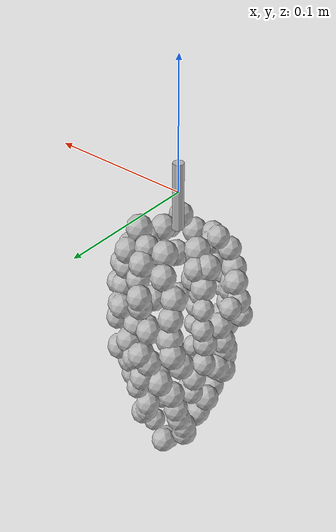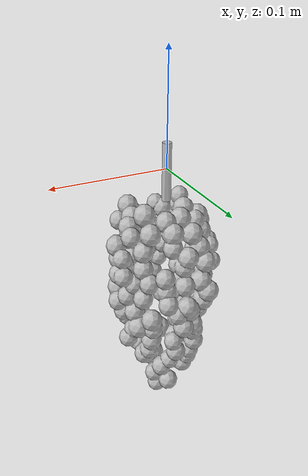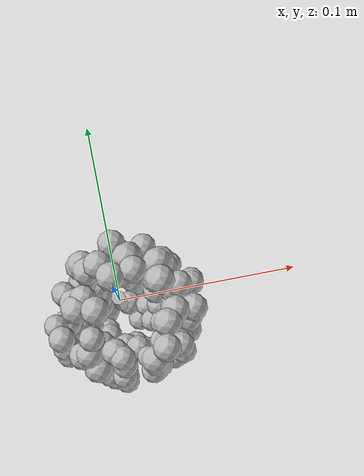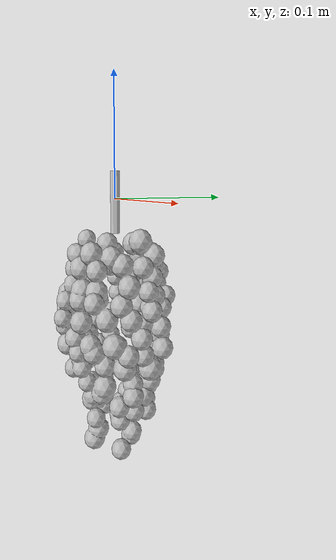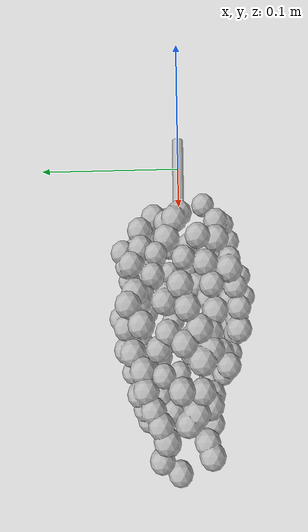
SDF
<?xml version='1.0' encoding='utf-8'?>
<sdf version="1.6">
  <model name="grape_bunch_red_globe">
    <link name="bunch">
      <gravity>false</gravity>
      <inertial>
        <pose>0.000676066 -0.000948932 -0.121872 0 0 0</pose>
        <mass>0.15</mass>
        <inertia>
          <ixx>0.000619996</ixx>
          <iyy>0.000625199</iyy>
          <izz>0.000256956</izz>
          <ixy>0</ixy>
          <ixz>0</ixz>
          <iyz>0</iyz>
        </inertia>
      </inertial>
      <collision name="berries">
        <pose>0.000676066 -0.000948932 -0.121872 0 0 0</pose>
        <geometry>
          <box>
            <size>0.102403 0.10035 0.19882</size>
          </box>
        </geometry>
      </collision>
      <visual name="berries">
        <geometry>
          <mesh>
            <uri>model://grape_bunch_red_globe/meshes/berries.obj</uri>
          </mesh>
        </geometry>
      </visual>
      <visual name="stem">
        <geometry>
          <mesh>
            <uri>model://grape_bunch_red_globe/meshes/stem.obj</uri>
          </mesh>
        </geometry>
      </visual>
    </link>
  </model>
</sdf>
